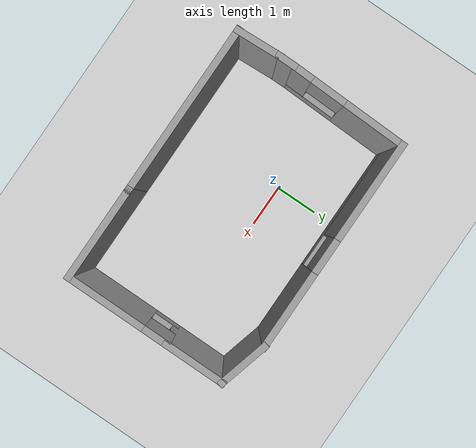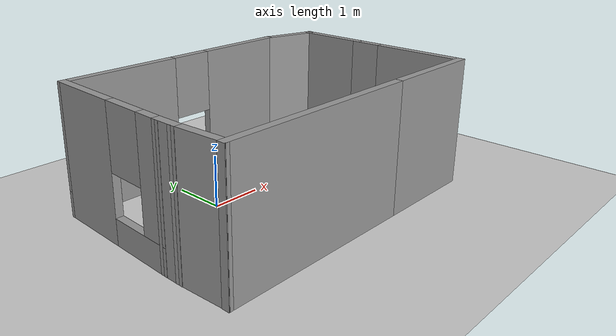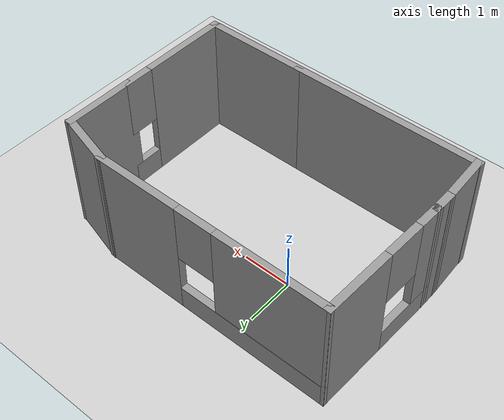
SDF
<sdf version="1.6">
 <world name="default">
  <light name="sun" type="directional">
   <pose>0 0 10 0 -0 0</pose>
   <diffuse>0.8 0.8 0.8 1</diffuse>
   <specular>0.2 0.2 0.2 1</specular>
   <attenuation>
    <range>1000</range>
    <constant>0.9</constant>
    <linear>0.01</linear>
    <quadratic>0.001</quadratic>
   </attenuation>
   <direction>-0.5 0.1 -0.9</direction>
  </light>
  <model name="ground_plane">
   <static>1</static>
   <link name="link">
    <collision name="collision">
     <geometry><plane><normal>0 0 1</normal><size>100 100</size></plane></geometry>
     <surface><friction><ode><mu>100</mu><mu2>50</mu2></ode></friction></surface>
    </collision>
    <visual name="visual">
     <cast_shadows>0</cast_shadows>
     <geometry><plane><normal>0 0 1</normal><size>100 100</size></plane></geometry>
     <material>
      <script><uri>file://media/materials/scripts/gazebo.material</uri><name>Gazebo/Grey</name></script>
     </material>
    </visual>
   </link>
  </model>
  <gravity>0 0 -9.8</gravity>
  <magnetic_field>6e-06 2.3e-05 -4.2e-05</magnetic_field>
  <atmosphere type="adiabatic"/>
  <physics name="default_physics" default="0" type="ode">
   <max_step_size>0.001</max_step_size>
   <real_time_factor>1</real_time_factor>
   <real_time_update_rate>1000</real_time_update_rate>
  </physics>
  <scene><ambient>0.4 0.4 0.4 1</ambient><background>0.7 0.7 0.7 1</background><shadows>1</shadows></scene>
  <spherical_coordinates>
   <surface_model>EARTH_WGS84</surface_model>
   <latitude_deg>0</latitude_deg>
   <longitude_deg>0</longitude_deg>
   <elevation>0</elevation>
   <heading_deg>0</heading_deg>
  </spherical_coordinates>
  <model name="pop">
   <pose>0.961528 -0.491121 0 0 -0 0</pose>
   <link name="Wall_10">
    <collision name="Wall_10_Collision">
     <geometry><box><size>0.5 0.15 2.5</size></box></geometry>
     <pose>0 0 1.25 0 -0 0</pose>
    </collision>
    <visual name="Wall_10_Visual">
     <pose>0 0 1.25 0 -0 0</pose>
     <geometry><box><size>0.5 0.15 2.5</size></box></geometry>
     <material>
      <script><uri>file://media/materials/scripts/gazebo.material</uri><name>Gazebo/Grey</name></script>
      <ambient>1 1 1 1</ambient>
     </material>
     <meta><layer>0</layer></meta>
    </visual>
    <pose>-3.00153 -0.863879 0 0 -0 1.5708</pose>
   </link>
   <link name="Wall_12">
    <collision name="Wall_12_Collision">
     <geometry><box><size>2.25 0.15 2.5</size></box></geometry>
     <pose>0 0 1.25 0 -0 0</pose>
    </collision>
    <visual name="Wall_12_Visual">
     <pose>0 0 1.25 0 -0 0</pose>
     <geometry><box><size>2.25 0.15 2.5</size></box></geometry>
     <material>
      <script><uri>file://media/materials/scripts/gazebo.material</uri><name>Gazebo/Grey</name></script>
      <ambient>1 1 1 1</ambient>
     </material>
     <meta><layer>0</layer></meta>
    </visual>
    <pose>1.93847 -1.99888 0 0 -0 0</pose>
   </link>
   <link name="Wall_13">
    <pose>2.98847 -0.823879 0 0 -0 1.5708</pose>
    <visual name="Wall_13_Visual_0">
     <pose>-0.3125 0 1.25 0 -0 0</pose>
     <geometry><box><size>1.875 0.15 2.5</size></box></geometry>
     <material>
      <script><uri>file://media/materials/scripts/gazebo.material</uri><name>Gazebo/Grey</name></script>
      <ambient>1 1 1 1</ambient>
     </material>
     <meta><layer>0</layer></meta>
    </visual>
    <collision name="Wall_13_Collision_0">
     <geometry><box><size>1.875 0.15 2.5</size></box></geometry>
     <pose>-0.3125 0 1.25 0 -0 0</pose>
    </collision>
    <visual name="Wall_13_Visual_1">
     <pose>0.9375 0 0.25 0 -0 0</pose>
     <geometry><box><size>0.625 0.15 0.5</size></box></geometry>
     <material>
      <script><uri>file://media/materials/scripts/gazebo.material</uri><name>Gazebo/Grey</name></script>
      <ambient>1 1 1 1</ambient>
     </material>
     <meta><layer>0</layer></meta>
    </visual>
    <collision name="Wall_13_Collision_1">
     <geometry><box><size>0.625 0.15 0.5</size></box></geometry>
     <pose>0.9375 0 0.25 0 -0 0</pose>
    </collision>
    <visual name="Wall_13_Visual_2">
     <pose>0.9375 0 1.9 0 -0 0</pose>
     <geometry><box><size>0.625 0.15 1.2</size></box></geometry>
     <material>
      <script><uri>file://media/materials/scripts/gazebo.material</uri><name>Gazebo/Grey</name></script>
      <ambient>1 1 1 1</ambient>
     </material>
     <meta><layer>0</layer></meta>
    </visual>
    <collision name="Wall_13_Collision_2">
     <geometry><box><size>0.625 0.15 1.2</size></box></geometry>
     <pose>0.9375 0 1.9 0 -0 0</pose>
    </collision>
   </link>
   <link name="Wall_15">
    <collision name="Wall_15_Collision">
     <geometry><box><size>1.5 0.15 2.5</size></box></geometry>
     <pose>0 0 1.25 0 -0 0</pose>
    </collision>
    <visual name="Wall_15_Visual">
     <pose>0 0 1.25 0 -0 0</pose>
     <geometry><box><size>1.5 0.15 2.5</size></box></geometry>
     <material>
      <script><uri>file://media/materials/scripts/gazebo.material</uri><name>Gazebo/Grey</name></script>
      <ambient>1 1 1 1</ambient>
     </material>
     <meta><layer>0</layer></meta>
    </visual>
    <pose>2.98847 1.02612 0 0 -0 1.5708</pose>
   </link>
   <link name="Wall_16">
    <collision name="Wall_16_Collision">
     <geometry><box><size>1.25 0.15 2.5</size></box></geometry>
     <pose>0 0 1.25 0 -0 0</pose>
    </collision>
    <visual name="Wall_16_Visual">
     <pose>0 0 1.25 0 -0 0</pose>
     <geometry><box><size>1.25 0.15 2.5</size></box></geometry>
     <material>
      <script><uri>file://media/materials/scripts/gazebo.material</uri><name>Gazebo/Grey</name></script>
      <ambient>1 1 1 1</ambient>
     </material>
     <meta><layer>0</layer></meta>
    </visual>
    <pose>2.45721 1.84347 0 0 -0 2.87979</pose>
   </link>
   <link name="Wall_17">
    <pose>-0.499047 1.98582 0 0 -0 3.14159</pose>
    <visual name="Wall_17_Visual_0">
     <pose>-1.57876 0 1.25 0 -0 0</pose>
     <geometry><box><size>1.84248 0.15 2.5</size></box></geometry>
     <material>
      <script><uri>file://media/materials/scripts/gazebo.material</uri><name>Gazebo/Grey</name></script>
      <ambient>1 1 1 1</ambient>
     </material>
     <meta><layer>0</layer></meta>
    </visual>
    <collision name="Wall_17_Collision_0">
     <geometry><box><size>1.84248 0.15 2.5</size></box></geometry>
     <pose>-1.57876 0 1.25 0 -0 0</pose>
    </collision>
    <visual name="Wall_17_Visual_1">
     <pose>0.921241 0 0.25 0 -0 0</pose>
     <geometry><box><size>3.15752 0.15 0.5</size></box></geometry>
     <material>
      <script><uri>file://media/materials/scripts/gazebo.material</uri><name>Gazebo/Grey</name></script>
      <ambient>1 1 1 1</ambient>
     </material>
     <meta><layer>0</layer></meta>
    </visual>
    <collision name="Wall_17_Collision_1">
     <geometry><box><size>3.15752 0.15 0.5</size></box></geometry>
     <pose>0.921241 0 0.25 0 -0 0</pose>
    </collision>
    <visual name="Wall_17_Visual_2">
     <pose>1.32124 0 1.5 0 -0 0</pose>
     <geometry><box><size>2.35752 0.15 2</size></box></geometry>
     <material>
      <script><uri>file://media/materials/scripts/gazebo.material</uri><name>Gazebo/Grey</name></script>
      <ambient>1 1 1 1</ambient>
     </material>
     <meta><layer>0</layer></meta>
    </visual>
    <collision name="Wall_17_Collision_2">
     <geometry><box><size>2.35752 0.15 2</size></box></geometry>
     <pose>1.32124 0 1.5 0 -0 0</pose>
    </collision>
    <visual name="Wall_17_Visual_3">
     <pose>-0.257518 0 1.9 0 -0 0</pose>
     <geometry><box><size>0.8 0.15 1.2</size></box></geometry>
     <material>
      <script><uri>file://media/materials/scripts/gazebo.material</uri><name>Gazebo/Grey</name></script>
      <ambient>1 1 1 1</ambient>
     </material>
     <meta><layer>0</layer></meta>
    </visual>
    <collision name="Wall_17_Collision_3">
     <geometry><box><size>0.8 0.15 1.2</size></box></geometry>
     <pose>-0.257518 0 1.9 0 -0 0</pose>
    </collision>
   </link>
   <link name="Wall_18">
    <pose>-2.96279 0.648472 0 0 -0 -1.59976</pose>
    <visual name="Wall_18_Visual_0">
     <pose>-0.672607 0 1.25 0 -0 0</pose>
     <geometry><box><size>1.48061 0.15 2.5</size></box></geometry>
     <material>
      <script><uri>file://media/materials/scripts/gazebo.material</uri><name>Gazebo/Grey</name></script>
      <ambient>1 1 1 1</ambient>
     </material>
     <meta><layer>0</layer></meta>
    </visual>
    <collision name="Wall_18_Collision_0">
     <geometry><box><size>1.48061 0.15 2.5</size></box></geometry>
     <pose>-0.672607 0 1.25 0 -0 0</pose>
    </collision>
    <visual name="Wall_18_Visual_1">
     <pose>0.740304 0 0.25 0 -0 0</pose>
     <geometry><box><size>1.34521 0.15 0.5</size></box></geometry>
     <material>
      <script><uri>file://media/materials/scripts/gazebo.material</uri><name>Gazebo/Grey</name></script>
      <ambient>1 1 1 1</ambient>
     </material>
     <meta><layer>0</layer></meta>
    </visual>
    <collision name="Wall_18_Collision_1">
     <geometry><box><size>1.34521 0.15 0.5</size></box></geometry>
     <pose>0.740304 0 0.25 0 -0 0</pose>
    </collision>
    <visual name="Wall_18_Visual_2">
     <pose>1.1403 0 1.5 0 -0 0</pose>
     <geometry><box><size>0.545214 0.15 2</size></box></geometry>
     <material>
      <script><uri>file://media/materials/scripts/gazebo.material</uri><name>Gazebo/Grey</name></script>
      <ambient>1 1 1 1</ambient>
     </material>
     <meta><layer>0</layer></meta>
    </visual>
    <collision name="Wall_18_Collision_2">
     <geometry><box><size>0.545214 0.15 2</size></box></geometry>
     <pose>1.1403 0 1.5 0 -0 0</pose>
    </collision>
    <visual name="Wall_18_Visual_3">
     <pose>0.467697 0 1.9 0 -0 0</pose>
     <geometry><box><size>0.8 0.15 1.2</size></box></geometry>
     <material>
      <script><uri>file://media/materials/scripts/gazebo.material</uri><name>Gazebo/Grey</name></script>
      <ambient>1 1 1 1</ambient>
     </material>
     <meta><layer>0</layer></meta>
    </visual>
    <collision name="Wall_18_Collision_3">
     <geometry><box><size>0.8 0.15 1.2</size></box></geometry>
     <pose>0.467697 0 1.9 0 -0 0</pose>
    </collision>
   </link>
   <link name="Wall_8">
    <collision name="Wall_8_Collision">
     <geometry><box><size>4 0.15 2.5</size></box></geometry>
     <pose>0 0 1.25 0 -0 0</pose>
    </collision>
    <visual name="Wall_8_Visual">
     <pose>0 0 1.25 0 -0 0</pose>
     <geometry><box><size>4 0.15 2.5</size></box></geometry>
     <material>
      <script><uri>file://media/materials/scripts/gazebo.material</uri><name>Gazebo/Grey</name></script>
      <ambient>1 1 1 1</ambient>
     </material>
     <meta><layer>0</layer></meta>
    </visual>
    <pose>-1.03653 -1.99888 0 0 -0 3.14159</pose>
   </link>
   <link name="Wall_9">
    <collision name="Wall_9_Collision">
     <geometry><box><size>1.1113 0.15 2.5</size></box></geometry>
     <pose>0 0 1.25 0 -0 0</pose>
    </collision>
    <visual name="Wall_9_Visual">
     <pose>0 0 1.25 0 -0 0</pose>
     <geometry><box><size>1.1113 0.15 2.5</size></box></geometry>
     <material>
      <script><uri>file://media/materials/scripts/gazebo.material</uri><name>Gazebo/Grey</name></script>
      <ambient>1 1 1 1</ambient>
     </material>
     <meta><layer>0</layer></meta>
    </visual>
    <pose>-2.97653 -1.51888 0 0 -0 1.62283</pose>
   </link>
   <static>1</static>
  </model>
 </world>
</sdf>
